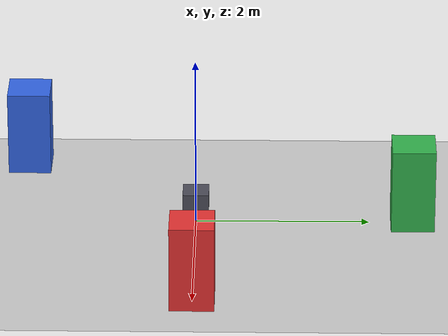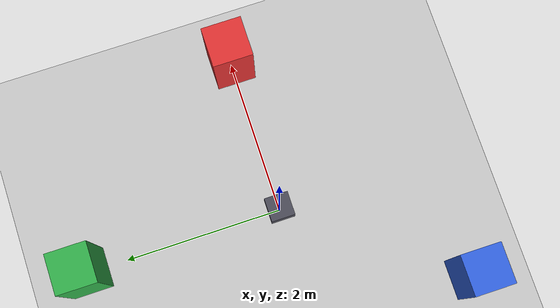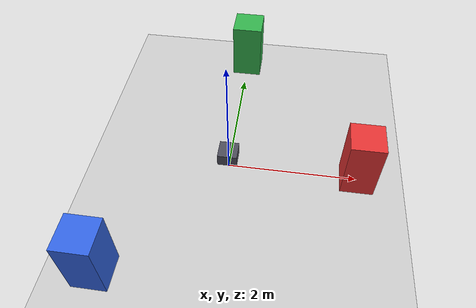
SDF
<?xml version="1.0" ?>
<sdf version="1.10">
  <world name="sensors_world">
    <physics name="1ms" type="ignored">
      <max_step_size>0.001</max_step_size>
      <real_time_factor>1.0</real_time_factor>
    </physics>

    <plugin filename="gz-sim-physics-system" name="gz::sim::systems::Physics"/>
    <plugin filename="gz-sim-user-commands-system" name="gz::sim::systems::UserCommands"/>
    <plugin filename="gz-sim-scene-broadcaster-system" name="gz::sim::systems::SceneBroadcaster"/>
    <plugin filename="gz-sim-sensors-system" name="gz::sim::systems::Sensors">
      <render_engine>ogre2</render_engine>
    </plugin>
    <plugin filename="gz-sim-imu-system" name="gz::sim::systems::Imu"/>

    <light type="directional" name="sun">
      <cast_shadows>true</cast_shadows>
      <pose>0 0 10 0 0 0</pose>
      <diffuse>1 1 1 1</diffuse>
      <specular>0.2 0.2 0.2 1</specular>
      <direction>-0.5 0.1 -0.9</direction>
    </light>

    <model name="ground_plane">
      <static>true</static>
      <link name="link">
        <collision name="collision">
          <geometry><plane><normal>0 0 1</normal><size>100 100</size></plane></geometry>
        </collision>
        <visual name="visual">
          <geometry><plane><normal>0 0 1</normal><size>100 100</size></plane></geometry>
          <material>
            <ambient>0.8 0.8 0.8 1</ambient>
            <diffuse>0.8 0.8 0.8 1</diffuse>
          </material>
        </visual>
      </link>
    </model>

    <model name="sensor_bot">
      <static>true</static>
      <pose>0 0 0.3 0 0 0</pose>
      <link name="base_link">
        <visual name="body">
          <geometry><box><size>0.3 0.3 0.2</size></box></geometry>
          <material><ambient>0.3 0.3 0.35 1</ambient><diffuse>0.3 0.3 0.35 1</diffuse></material>
        </visual>

        <sensor name="camera" type="camera">
          <pose>0.16 0 0.0 0 0 0</pose>
          <topic>camera</topic>
          <update_rate>15</update_rate>
          <always_on>1</always_on>
          <visualize>true</visualize>
          <camera>
            <horizontal_fov>1.047</horizontal_fov>
            <image><width>640</width><height>480</height><format>R8G8B8</format></image>
            <clip><near>0.1</near><far>100</far></clip>
          </camera>
        </sensor>

        <sensor name="lidar" type="gpu_lidar">
          <pose>0 0 0.15 0 0 0</pose>
          <topic>scan</topic>
          <update_rate>10</update_rate>
          <always_on>1</always_on>
          <visualize>true</visualize>
          <lidar>
            <scan>
              <horizontal>
                <samples>360</samples>
                <resolution>1</resolution>
                <min_angle>-3.14159</min_angle>
                <max_angle>3.14159</max_angle>
              </horizontal>
              <vertical>
                <samples>1</samples>
                <resolution>1</resolution>
                <min_angle>0</min_angle>
                <max_angle>0</max_angle>
              </vertical>
            </scan>
            <range>
              <min>0.12</min>
              <max>12.0</max>
              <resolution>0.01</resolution>
            </range>
          </lidar>
        </sensor>

        <sensor name="imu" type="imu">
          <topic>imu</topic>
          <update_rate>50</update_rate>
          <always_on>1</always_on>
          <visualize>true</visualize>
        </sensor>
      </link>
    </model>

    <!-- Targets for the camera (front) and the LiDAR (around). -->
    <model name="box_front">
      <static>true</static>
      <pose>2 0 0.5 0 0 0</pose>
      <link name="link">
        <collision name="collision"><geometry><box><size>0.5 0.5 1</size></box></geometry></collision>
        <visual name="visual">
          <geometry><box><size>0.5 0.5 1</size></box></geometry>
          <material><ambient>0.9 0.2 0.2 1</ambient><diffuse>0.9 0.2 0.2 1</diffuse></material>
        </visual>
      </link>
    </model>
    <model name="box_left">
      <static>true</static>
      <pose>0 2.5 0.5 0 0 0</pose>
      <link name="link">
        <collision name="collision"><geometry><box><size>0.5 0.5 1</size></box></geometry></collision>
        <visual name="visual">
          <geometry><box><size>0.5 0.5 1</size></box></geometry>
          <material><ambient>0.2 0.7 0.3 1</ambient><diffuse>0.2 0.7 0.3 1</diffuse></material>
        </visual>
      </link>
    </model>
    <model name="box_right">
      <static>true</static>
      <pose>-1.5 -2 0.5 0 0 0</pose>
      <link name="link">
        <collision name="collision"><geometry><box><size>0.5 0.5 1</size></box></geometry></collision>
        <visual name="visual">
          <geometry><box><size>0.5 0.5 1</size></box></geometry>
          <material><ambient>0.2 0.4 0.9 1</ambient><diffuse>0.2 0.4 0.9 1</diffuse></material>
        </visual>
      </link>
    </model>
  </world>
</sdf>
